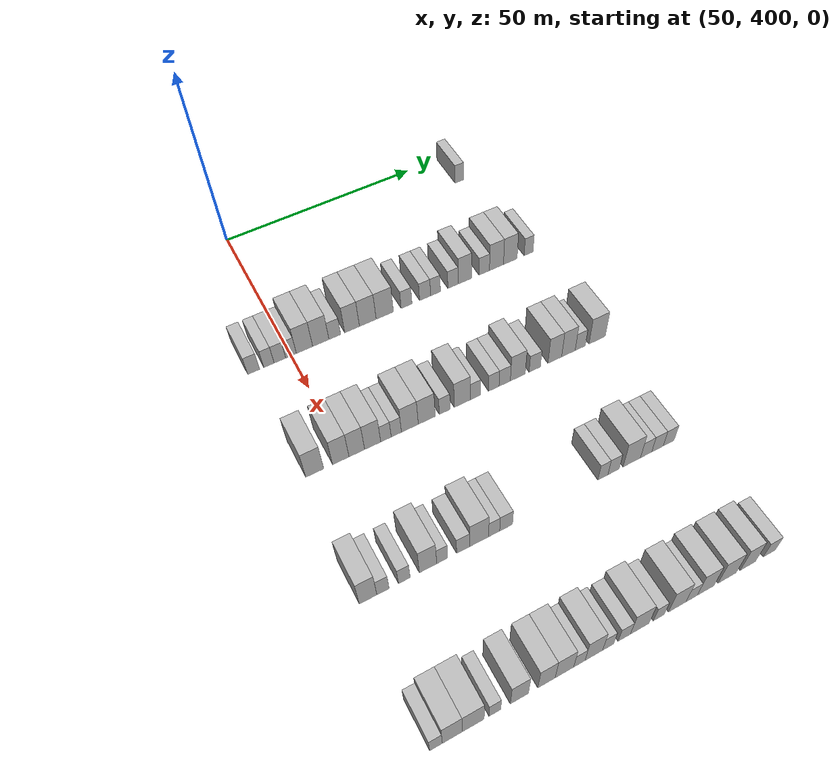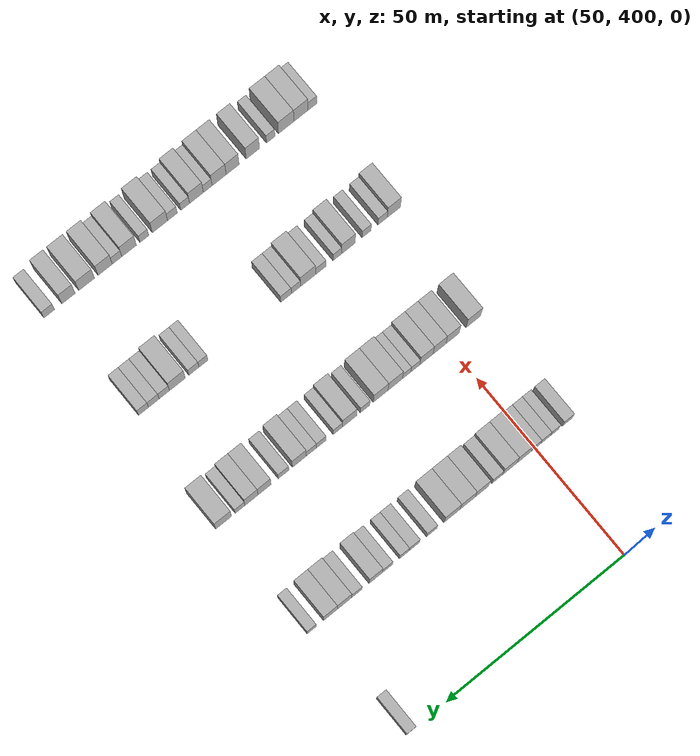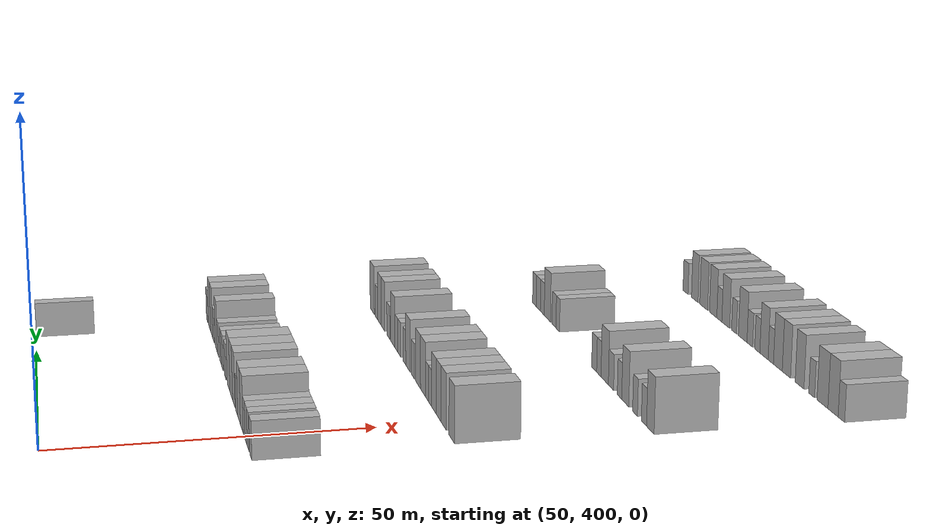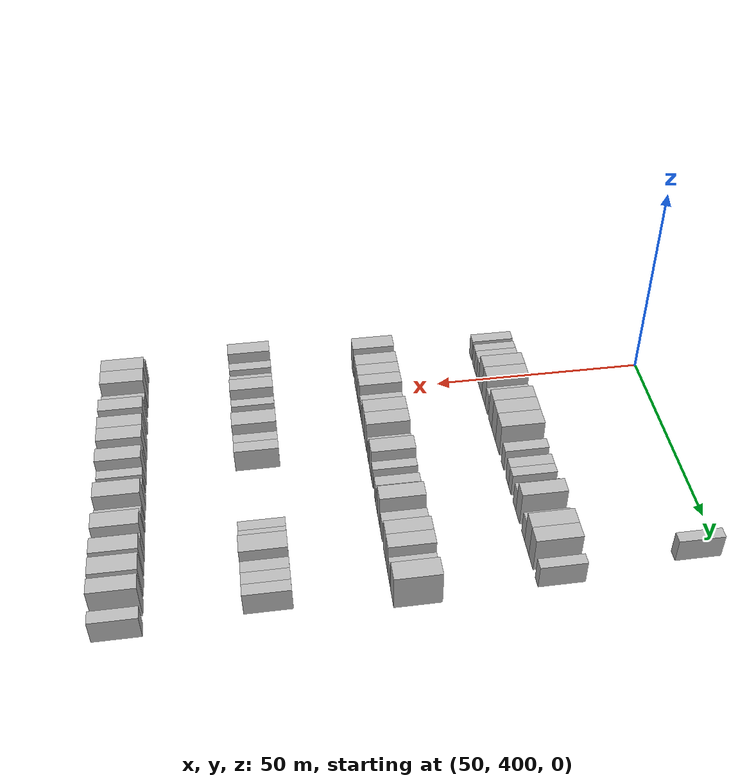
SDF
<sdf version="1.6">
 <world name="default">
  <model name="building_454">
   <static>1</static>
   <pose>55.0000 459.7949 0 0.000000 0.000000 0.000000</pose>
   <link name="link">
    <pose>0 0 3.00 0 0 0</pose>
    <collision name="collision"><geometry><box><size>10.0000 2.5331 6.0000</size></box></geometry></collision>
    <visual name="visual">
     <cast_shadows>0</cast_shadows>
     <geometry><box><size>10.0000 2.5331 6.0000</size></box></geometry>
     <material>
      <script>
       <uri>model://HANNAS_wall/materials/scripts</uri>
       <uri>model://HANNAS_wall/materials/textures</uri>
       <name>vrc/HANNAS_wall</name>
      </script>
     </material>
    </visual>
   </link>
  </model>
  <model name="building_666">
   <static>1</static>
   <pose>85.0000 391.0215 0 0.000000 0.000000 0.000000</pose>
   <link name="link">
    <pose>0 0 3.00 0 0 0</pose>
    <collision name="collision"><geometry><box><size>10.0000 2.8382 6.0000</size></box></geometry></collision>
    <visual name="visual">
     <cast_shadows>0</cast_shadows>
     <geometry><box><size>10.0000 2.8382 6.0000</size></box></geometry>
     <material>
      <script>
       <uri>model://HANNAS_wall/materials/scripts</uri>
       <uri>model://HANNAS_wall/materials/textures</uri>
       <name>vrc/HANNAS_wall</name>
      </script>
     </material>
    </visual>
   </link>
  </model>
  <model name="building_667">
   <static>1</static>
   <pose>85.0000 394.6802 0 0.000000 0.000000 0.000000</pose>
   <link name="link">
    <pose>0 0 3.00 0 0 0</pose>
    <collision name="collision"><geometry><box><size>10.0000 2.4791 6.0000</size></box></geometry></collision>
    <visual name="visual">
     <cast_shadows>0</cast_shadows>
     <geometry><box><size>10.0000 2.4791 6.0000</size></box></geometry>
     <material>
      <script>
       <uri>model://HANNAS_wall/materials/scripts</uri>
       <uri>model://HANNAS_wall/materials/textures</uri>
       <name>vrc/HANNAS_wall</name>
      </script>
     </material>
    </visual>
   </link>
  </model>
  <model name="building_668">
   <static>1</static>
   <pose>85.0000 397.3188 0 0.000000 0.000000 0.000000</pose>
   <link name="link">
    <pose>0 0 3.00 0 0 0</pose>
    <collision name="collision"><geometry><box><size>10.0000 2.7982 6.0000</size></box></geometry></collision>
    <visual name="visual">
     <cast_shadows>0</cast_shadows>
     <geometry><box><size>10.0000 2.7982 6.0000</size></box></geometry>
     <material>
      <script>
       <uri>model://HANNAS_wall/materials/scripts</uri>
       <uri>model://HANNAS_wall/materials/textures</uri>
       <name>vrc/HANNAS_wall</name>
      </script>
     </material>
    </visual>
   </link>
  </model>
  <model name="building_669">
   <static>1</static>
   <pose>85.0000 400.0194 0 0.000000 0.000000 0.000000</pose>
   <link name="link">
    <pose>0 0 3.00 0 0 0</pose>
    <collision name="collision"><geometry><box><size>10.0000 2.6029 6.0000</size></box></geometry></collision>
    <visual name="visual">
     <cast_shadows>0</cast_shadows>
     <geometry><box><size>10.0000 2.6029 6.0000</size></box></geometry>
     <material>
      <script>
       <uri>model://HANNAS_wall/materials/scripts</uri>
       <uri>model://HANNAS_wall/materials/textures</uri>
       <name>vrc/HANNAS_wall</name>
      </script>
     </material>
    </visual>
   </link>
  </model>
  <model name="building_670">
   <static>1</static>
   <pose>85.0000 403.3253 0 0.000000 0.000000 0.000000</pose>
   <link name="link">
    <pose>0 0 4.50 0 0 0</pose>
    <collision name="collision"><geometry><box><size>10.0000 4.0091 9.0000</size></box></geometry></collision>
    <visual name="visual">
     <cast_shadows>0</cast_shadows>
     <geometry><box><size>10.0000 4.0091 9.0000</size></box></geometry>
     <material>
      <script>
       <uri>model://HANNAS_wall/materials/scripts</uri>
       <uri>model://HANNAS_wall/materials/textures</uri>
       <name>vrc/HANNAS_wall</name>
      </script>
     </material>
    </visual>
   </link>
  </model>
  <model name="building_671">
   <static>1</static>
   <pose>85.0000 407.3472 0 0.000000 0.000000 0.000000</pose>
   <link name="link">
    <pose>0 0 4.50 0 0 0</pose>
    <collision name="collision"><geometry><box><size>10.0000 4.0347 9.0000</size></box></geometry></collision>
    <visual name="visual">
     <cast_shadows>0</cast_shadows>
     <geometry><box><size>10.0000 4.0347 9.0000</size></box></geometry>
     <material>
      <script>
       <uri>model://HANNAS_wall/materials/scripts</uri>
       <uri>model://HANNAS_wall/materials/textures</uri>
       <name>vrc/HANNAS_wall</name>
      </script>
     </material>
    </visual>
   </link>
  </model>
  <model name="building_672">
   <static>1</static>
   <pose>85.0000 410.8378 0 0.000000 0.000000 0.000000</pose>
   <link name="link">
    <pose>0 0 3.00 0 0 0</pose>
    <collision name="collision"><geometry><box><size>10.0000 2.9465 6.0000</size></box></geometry></collision>
    <visual name="visual">
     <cast_shadows>0</cast_shadows>
     <geometry><box><size>10.0000 2.9465 6.0000</size></box></geometry>
     <material>
      <script>
       <uri>model://HANNAS_wall/materials/scripts</uri>
       <uri>model://HANNAS_wall/materials/textures</uri>
       <name>vrc/HANNAS_wall</name>
      </script>
     </material>
    </visual>
   </link>
  </model>
  <model name="building_673">
   <static>1</static>
   <pose>85.0000 415.1798 0 0.000000 0.000000 0.000000</pose>
   <link name="link">
    <pose>0 0 4.50 0 0 0</pose>
    <collision name="collision"><geometry><box><size>10.0000 3.7377 9.0000</size></box></geometry></collision>
    <visual name="visual">
     <cast_shadows>0</cast_shadows>
     <geometry><box><size>10.0000 3.7377 9.0000</size></box></geometry>
     <material>
      <script>
       <uri>model://HANNAS_wall/materials/scripts</uri>
       <uri>model://HANNAS_wall/materials/textures</uri>
       <name>vrc/HANNAS_wall</name>
      </script>
     </material>
    </visual>
   </link>
  </model>
  <model name="building_674">
   <static>1</static>
   <pose>85.0000 419.1866 0 0.000000 0.000000 0.000000</pose>
   <link name="link">
    <pose>0 0 4.50 0 0 0</pose>
    <collision name="collision"><geometry><box><size>10.0000 4.2758 9.0000</size></box></geometry></collision>
    <visual name="visual">
     <cast_shadows>0</cast_shadows>
     <geometry><box><size>10.0000 4.2758 9.0000</size></box></geometry>
     <material>
      <script>
       <uri>model://HANNAS_wall/materials/scripts</uri>
       <uri>model://HANNAS_wall/materials/textures</uri>
       <name>vrc/HANNAS_wall</name>
      </script>
     </material>
    </visual>
   </link>
  </model>
  <model name="building_675">
   <static>1</static>
   <pose>85.0000 423.5569 0 0.000000 0.000000 0.000000</pose>
   <link name="link">
    <pose>0 0 4.50 0 0 0</pose>
    <collision name="collision"><geometry><box><size>10.0000 4.4648 9.0000</size></box></geometry></collision>
    <visual name="visual">
     <cast_shadows>0</cast_shadows>
     <geometry><box><size>10.0000 4.4648 9.0000</size></box></geometry>
     <material>
      <script>
       <uri>model://HANNAS_wall/materials/scripts</uri>
       <uri>model://HANNAS_wall/materials/textures</uri>
       <name>vrc/HANNAS_wall</name>
      </script>
     </material>
    </visual>
   </link>
  </model>
  <model name="building_676">
   <static>1</static>
   <pose>85.0000 429.2192 0 0.000000 0.000000 0.000000</pose>
   <link name="link">
    <pose>0 0 3.00 0 0 0</pose>
    <collision name="collision"><geometry><box><size>10.0000 2.8599 6.0000</size></box></geometry></collision>
    <visual name="visual">
     <cast_shadows>0</cast_shadows>
     <geometry><box><size>10.0000 2.8599 6.0000</size></box></geometry>
     <material>
      <script>
       <uri>model://HANNAS_wall/materials/scripts</uri>
       <uri>model://HANNAS_wall/materials/textures</uri>
       <name>vrc/HANNAS_wall</name>
      </script>
     </material>
    </visual>
   </link>
  </model>
  <model name="building_677">
   <static>1</static>
   <pose>85.0000 434.1129 0 0.000000 0.000000 0.000000</pose>
   <link name="link">
    <pose>0 0 3.00 0 0 0</pose>
    <collision name="collision"><geometry><box><size>10.0000 2.9276 6.0000</size></box></geometry></collision>
    <visual name="visual">
     <cast_shadows>0</cast_shadows>
     <geometry><box><size>10.0000 2.9276 6.0000</size></box></geometry>
     <material>
      <script>
       <uri>model://HANNAS_wall/materials/scripts</uri>
       <uri>model://HANNAS_wall/materials/textures</uri>
       <name>vrc/HANNAS_wall</name>
      </script>
     </material>
    </visual>
   </link>
  </model>
  <model name="building_678">
   <static>1</static>
   <pose>85.0000 436.8897 0 0.000000 0.000000 0.000000</pose>
   <link name="link">
    <pose>0 0 3.00 0 0 0</pose>
    <collision name="collision"><geometry><box><size>10.0000 2.6261 6.0000</size></box></geometry></collision>
    <visual name="visual">
     <cast_shadows>0</cast_shadows>
     <geometry><box><size>10.0000 2.6261 6.0000</size></box></geometry>
     <material>
      <script>
       <uri>model://HANNAS_wall/materials/scripts</uri>
       <uri>model://HANNAS_wall/materials/textures</uri>
       <name>vrc/HANNAS_wall</name>
      </script>
     </material>
    </visual>
   </link>
  </model>
  <model name="building_679">
   <static>1</static>
   <pose>85.0000 441.6103 0 0.000000 0.000000 0.000000</pose>
   <link name="link">
    <pose>0 0 3.00 0 0 0</pose>
    <collision name="collision"><geometry><box><size>10.0000 2.8151 6.0000</size></box></geometry></collision>
    <visual name="visual">
     <cast_shadows>0</cast_shadows>
     <geometry><box><size>10.0000 2.8151 6.0000</size></box></geometry>
     <material>
      <script>
       <uri>model://HANNAS_wall/materials/scripts</uri>
       <uri>model://HANNAS_wall/materials/textures</uri>
       <name>vrc/HANNAS_wall</name>
      </script>
     </material>
    </visual>
   </link>
  </model>
  <model name="building_680">
   <static>1</static>
   <pose>85.0000 444.8473 0 0.000000 0.000000 0.000000</pose>
   <link name="link">
    <pose>0 0 4.50 0 0 0</pose>
    <collision name="collision"><geometry><box><size>10.0000 3.6589 9.0000</size></box></geometry></collision>
    <visual name="visual">
     <cast_shadows>0</cast_shadows>
     <geometry><box><size>10.0000 3.6589 9.0000</size></box></geometry>
     <material>
      <script>
       <uri>model://HANNAS_wall/materials/scripts</uri>
       <uri>model://HANNAS_wall/materials/textures</uri>
       <name>vrc/HANNAS_wall</name>
      </script>
     </material>
    </visual>
   </link>
  </model>
  <model name="building_681">
   <static>1</static>
   <pose>85.0000 450.1234 0 0.000000 0.000000 0.000000</pose>
   <link name="link">
    <pose>0 0 3.00 0 0 0</pose>
    <collision name="collision"><geometry><box><size>10.0000 2.8934 6.0000</size></box></geometry></collision>
    <visual name="visual">
     <cast_shadows>0</cast_shadows>
     <geometry><box><size>10.0000 2.8934 6.0000</size></box></geometry>
     <material>
      <script>
       <uri>model://HANNAS_wall/materials/scripts</uri>
       <uri>model://HANNAS_wall/materials/textures</uri>
       <name>vrc/HANNAS_wall</name>
      </script>
     </material>
    </visual>
   </link>
  </model>
  <model name="building_682">
   <static>1</static>
   <pose>85.0000 453.5253 0 0.000000 0.000000 0.000000</pose>
   <link name="link">
    <pose>0 0 4.50 0 0 0</pose>
    <collision name="collision"><geometry><box><size>10.0000 3.9103 9.0000</size></box></geometry></collision>
    <visual name="visual">
     <cast_shadows>0</cast_shadows>
     <geometry><box><size>10.0000 3.9103 9.0000</size></box></geometry>
     <material>
      <script>
       <uri>model://HANNAS_wall/materials/scripts</uri>
       <uri>model://HANNAS_wall/materials/textures</uri>
       <name>vrc/HANNAS_wall</name>
      </script>
     </material>
    </visual>
   </link>
  </model>
  <model name="building_683">
   <static>1</static>
   <pose>85.0000 457.3898 0 0.000000 0.000000 0.000000</pose>
   <link name="link">
    <pose>0 0 4.50 0 0 0</pose>
    <collision name="collision"><geometry><box><size>10.0000 3.8187 9.0000</size></box></geometry></collision>
    <visual name="visual">
     <cast_shadows>0</cast_shadows>
     <geometry><box><size>10.0000 3.8187 9.0000</size></box></geometry>
     <material>
      <script>
       <uri>model://HANNAS_wall/materials/scripts</uri>
       <uri>model://HANNAS_wall/materials/textures</uri>
       <name>vrc/HANNAS_wall</name>
      </script>
     </material>
    </visual>
   </link>
  </model>
  <model name="building_684">
   <static>1</static>
   <pose>85.0000 462.5543 0 0.000000 0.000000 0.000000</pose>
   <link name="link">
    <pose>0 0 3.00 0 0 0</pose>
    <collision name="collision"><geometry><box><size>10.0000 2.5103 6.0000</size></box></geometry></collision>
    <visual name="visual">
     <cast_shadows>0</cast_shadows>
     <geometry><box><size>10.0000 2.5103 6.0000</size></box></geometry>
     <material>
      <script>
       <uri>model://HANNAS_wall/materials/scripts</uri>
       <uri>model://HANNAS_wall/materials/textures</uri>
       <name>vrc/HANNAS_wall</name>
      </script>
     </material>
    </visual>
   </link>
  </model>
  <model name="building_897">
   <static>1</static>
   <pose>115.0000 392.6122 0 0.000000 0.000000 0.000000</pose>
   <link name="link">
    <pose>0 0 4.50 0 0 0</pose>
    <collision name="collision"><geometry><box><size>10.0000 4.0948 9.0000</size></box></geometry></collision>
    <visual name="visual">
     <cast_shadows>0</cast_shadows>
     <geometry><box><size>10.0000 4.0948 9.0000</size></box></geometry>
     <material>
      <script>
       <uri>model://HANNAS_wall/materials/scripts</uri>
       <uri>model://HANNAS_wall/materials/textures</uri>
       <name>vrc/HANNAS_wall</name>
      </script>
     </material>
    </visual>
   </link>
  </model>
  <model name="building_898">
   <static>1</static>
   <pose>115.0000 398.5466 0 0.000000 0.000000 0.000000</pose>
   <link name="link">
    <pose>0 0 4.50 0 0 0</pose>
    <collision name="collision"><geometry><box><size>10.0000 3.7739 9.0000</size></box></geometry></collision>
    <visual name="visual">
     <cast_shadows>0</cast_shadows>
     <geometry><box><size>10.0000 3.7739 9.0000</size></box></geometry>
     <material>
      <script>
       <uri>model://HANNAS_wall/materials/scripts</uri>
       <uri>model://HANNAS_wall/materials/textures</uri>
       <name>vrc/HANNAS_wall</name>
      </script>
     </material>
    </visual>
   </link>
  </model>
  <model name="building_899">
   <static>1</static>
   <pose>115.0000 402.2479 0 0.000000 0.000000 0.000000</pose>
   <link name="link">
    <pose>0 0 4.50 0 0 0</pose>
    <collision name="collision"><geometry><box><size>10.0000 3.6287 9.0000</size></box></geometry></collision>
    <visual name="visual">
     <cast_shadows>0</cast_shadows>
     <geometry><box><size>10.0000 3.6287 9.0000</size></box></geometry>
     <material>
      <script>
       <uri>model://HANNAS_wall/materials/scripts</uri>
       <uri>model://HANNAS_wall/materials/textures</uri>
       <name>vrc/HANNAS_wall</name>
      </script>
     </material>
    </visual>
   </link>
  </model>
  <model name="building_900">
   <static>1</static>
   <pose>115.0000 405.9411 0 0.000000 0.000000 0.000000</pose>
   <link name="link">
    <pose>0 0 4.50 0 0 0</pose>
    <collision name="collision"><geometry><box><size>10.0000 3.7577 9.0000</size></box></geometry></collision>
    <visual name="visual">
     <cast_shadows>0</cast_shadows>
     <geometry><box><size>10.0000 3.7577 9.0000</size></box></geometry>
     <material>
      <script>
       <uri>model://HANNAS_wall/materials/scripts</uri>
       <uri>model://HANNAS_wall/materials/textures</uri>
       <name>vrc/HANNAS_wall</name>
      </script>
     </material>
    </visual>
   </link>
  </model>
  <model name="building_901">
   <static>1</static>
   <pose>115.0000 409.0632 0 0.000000 0.000000 0.000000</pose>
   <link name="link">
    <pose>0 0 3.00 0 0 0</pose>
    <collision name="collision"><geometry><box><size>10.0000 2.4864 6.0000</size></box></geometry></collision>
    <visual name="visual">
     <cast_shadows>0</cast_shadows>
     <geometry><box><size>10.0000 2.4864 6.0000</size></box></geometry>
     <material>
      <script>
       <uri>model://HANNAS_wall/materials/scripts</uri>
       <uri>model://HANNAS_wall/materials/textures</uri>
       <name>vrc/HANNAS_wall</name>
      </script>
     </material>
    </visual>
   </link>
  </model>
  <model name="building_902">
   <static>1</static>
   <pose>115.0000 411.5177 0 0.000000 0.000000 0.000000</pose>
   <link name="link">
    <pose>0 0 3.00 0 0 0</pose>
    <collision name="collision"><geometry><box><size>10.0000 2.4228 6.0000</size></box></geometry></collision>
    <visual name="visual">
     <cast_shadows>0</cast_shadows>
     <geometry><box><size>10.0000 2.4228 6.0000</size></box></geometry>
     <material>
      <script>
       <uri>model://HANNAS_wall/materials/scripts</uri>
       <uri>model://HANNAS_wall/materials/textures</uri>
       <name>vrc/HANNAS_wall</name>
      </script>
     </material>
    </visual>
   </link>
  </model>
  <model name="building_903">
   <static>1</static>
   <pose>115.0000 414.7535 0 0.000000 0.000000 0.000000</pose>
   <link name="link">
    <pose>0 0 4.50 0 0 0</pose>
    <collision name="collision"><geometry><box><size>10.0000 4.0487 9.0000</size></box></geometry></collision>
    <visual name="visual">
     <cast_shadows>0</cast_shadows>
     <geometry><box><size>10.0000 4.0487 9.0000</size></box></geometry>
     <material>
      <script>
       <uri>model://HANNAS_wall/materials/scripts</uri>
       <uri>model://HANNAS_wall/materials/textures</uri>
       <name>vrc/HANNAS_wall</name>
      </script>
     </material>
    </visual>
   </link>
  </model>
  <model name="building_904">
   <static>1</static>
   <pose>115.0000 418.8326 0 0.000000 0.000000 0.000000</pose>
   <link name="link">
    <pose>0 0 4.50 0 0 0</pose>
    <collision name="collision"><geometry><box><size>10.0000 4.1096 9.0000</size></box></geometry></collision>
    <visual name="visual">
     <cast_shadows>0</cast_shadows>
     <geometry><box><size>10.0000 4.1096 9.0000</size></box></geometry>
     <material>
      <script>
       <uri>model://HANNAS_wall/materials/scripts</uri>
       <uri>model://HANNAS_wall/materials/textures</uri>
       <name>vrc/HANNAS_wall</name>
      </script>
     </material>
    </visual>
   </link>
  </model>
  <model name="building_905">
   <static>1</static>
   <pose>115.0000 423.2217 0 0.000000 0.000000 0.000000</pose>
   <link name="link">
    <pose>0 0 3.00 0 0 0</pose>
    <collision name="collision"><geometry><box><size>10.0000 2.6685 6.0000</size></box></geometry></collision>
    <visual name="visual">
     <cast_shadows>0</cast_shadows>
     <geometry><box><size>10.0000 2.6685 6.0000</size></box></geometry>
     <material>
      <script>
       <uri>model://HANNAS_wall/materials/scripts</uri>
       <uri>model://HANNAS_wall/materials/textures</uri>
       <name>vrc/HANNAS_wall</name>
      </script>
     </material>
    </visual>
   </link>
  </model>
  <model name="building_906">
   <static>1</static>
   <pose>115.0000 427.5683 0 0.000000 0.000000 0.000000</pose>
   <link name="link">
    <pose>0 0 4.50 0 0 0</pose>
    <collision name="collision"><geometry><box><size>10.0000 4.0248 9.0000</size></box></geometry></collision>
    <visual name="visual">
     <cast_shadows>0</cast_shadows>
     <geometry><box><size>10.0000 4.0248 9.0000</size></box></geometry>
     <material>
      <script>
       <uri>model://HANNAS_wall/materials/scripts</uri>
       <uri>model://HANNAS_wall/materials/textures</uri>
       <name>vrc/HANNAS_wall</name>
      </script>
     </material>
    </visual>
   </link>
  </model>
  <model name="building_907">
   <static>1</static>
   <pose>115.0000 430.8566 0 0.000000 0.000000 0.000000</pose>
   <link name="link">
    <pose>0 0 3.00 0 0 0</pose>
    <collision name="collision"><geometry><box><size>10.0000 2.5518 6.0000</size></box></geometry></collision>
    <visual name="visual">
     <cast_shadows>0</cast_shadows>
     <geometry><box><size>10.0000 2.5518 6.0000</size></box></geometry>
     <material>
      <script>
       <uri>model://HANNAS_wall/materials/scripts</uri>
       <uri>model://HANNAS_wall/materials/textures</uri>
       <name>vrc/HANNAS_wall</name>
      </script>
     </material>
    </visual>
   </link>
  </model>
  <model name="building_908">
   <static>1</static>
   <pose>115.0000 435.4700 0 0.000000 0.000000 0.000000</pose>
   <link name="link">
    <pose>0 0 3.00 0 0 0</pose>
    <collision name="collision"><geometry><box><size>10.0000 2.6751 6.0000</size></box></geometry></collision>
    <visual name="visual">
     <cast_shadows>0</cast_shadows>
     <geometry><box><size>10.0000 2.6751 6.0000</size></box></geometry>
     <material>
      <script>
       <uri>model://HANNAS_wall/materials/scripts</uri>
       <uri>model://HANNAS_wall/materials/textures</uri>
       <name>vrc/HANNAS_wall</name>
      </script>
     </material>
    </visual>
   </link>
  </model>
  <model name="building_909">
   <static>1</static>
   <pose>115.0000 438.2445 0 0.000000 0.000000 0.000000</pose>
   <link name="link">
    <pose>0 0 3.00 0 0 0</pose>
    <collision name="collision"><geometry><box><size>10.0000 2.8740 6.0000</size></box></geometry></collision>
    <visual name="visual">
     <cast_shadows>0</cast_shadows>
     <geometry><box><size>10.0000 2.8740 6.0000</size></box></geometry>
     <material>
      <script>
       <uri>model://HANNAS_wall/materials/scripts</uri>
       <uri>model://HANNAS_wall/materials/textures</uri>
       <name>vrc/HANNAS_wall</name>
      </script>
     </material>
    </visual>
   </link>
  </model>
  <model name="building_910">
   <static>1</static>
   <pose>115.0000 441.6093 0 0.000000 0.000000 0.000000</pose>
   <link name="link">
    <pose>0 0 4.50 0 0 0</pose>
    <collision name="collision"><geometry><box><size>10.0000 3.8556 9.0000</size></box></geometry></collision>
    <visual name="visual">
     <cast_shadows>0</cast_shadows>
     <geometry><box><size>10.0000 3.8556 9.0000</size></box></geometry>
     <material>
      <script>
       <uri>model://HANNAS_wall/materials/scripts</uri>
       <uri>model://HANNAS_wall/materials/textures</uri>
       <name>vrc/HANNAS_wall</name>
      </script>
     </material>
    </visual>
   </link>
  </model>
  <model name="building_911">
   <static>1</static>
   <pose>115.0000 446.0100 0 0.000000 0.000000 0.000000</pose>
   <link name="link">
    <pose>0 0 3.00 0 0 0</pose>
    <collision name="collision"><geometry><box><size>10.0000 2.9459 6.0000</size></box></geometry></collision>
    <visual name="visual">
     <cast_shadows>0</cast_shadows>
     <geometry><box><size>10.0000 2.9459 6.0000</size></box></geometry>
     <material>
      <script>
       <uri>model://HANNAS_wall/materials/scripts</uri>
       <uri>model://HANNAS_wall/materials/textures</uri>
       <name>vrc/HANNAS_wall</name>
      </script>
     </material>
    </visual>
   </link>
  </model>
  <model name="building_912">
   <static>1</static>
   <pose>115.0000 451.2958 0 0.000000 0.000000 0.000000</pose>
   <link name="link">
    <pose>0 0 4.50 0 0 0</pose>
    <collision name="collision"><geometry><box><size>10.0000 3.6257 9.0000</size></box></geometry></collision>
    <visual name="visual">
     <cast_shadows>0</cast_shadows>
     <geometry><box><size>10.0000 3.6257 9.0000</size></box></geometry>
     <material>
      <script>
       <uri>model://HANNAS_wall/materials/scripts</uri>
       <uri>model://HANNAS_wall/materials/textures</uri>
       <name>vrc/HANNAS_wall</name>
      </script>
     </material>
    </visual>
   </link>
  </model>
  <model name="building_913">
   <static>1</static>
   <pose>115.0000 454.9191 0 0.000000 0.000000 0.000000</pose>
   <link name="link">
    <pose>0 0 4.50 0 0 0</pose>
    <collision name="collision"><geometry><box><size>10.0000 3.6208 9.0000</size></box></geometry></collision>
    <visual name="visual">
     <cast_shadows>0</cast_shadows>
     <geometry><box><size>10.0000 3.6208 9.0000</size></box></geometry>
     <material>
      <script>
       <uri>model://HANNAS_wall/materials/scripts</uri>
       <uri>model://HANNAS_wall/materials/textures</uri>
       <name>vrc/HANNAS_wall</name>
      </script>
     </material>
    </visual>
   </link>
  </model>
  <model name="building_914">
   <static>1</static>
   <pose>115.0000 458.0896 0 0.000000 0.000000 0.000000</pose>
   <link name="link">
    <pose>0 0 3.00 0 0 0</pose>
    <collision name="collision"><geometry><box><size>10.0000 2.7204 6.0000</size></box></geometry></collision>
    <visual name="visual">
     <cast_shadows>0</cast_shadows>
     <geometry><box><size>10.0000 2.7204 6.0000</size></box></geometry>
     <material>
      <script>
       <uri>model://HANNAS_wall/materials/scripts</uri>
       <uri>model://HANNAS_wall/materials/textures</uri>
       <name>vrc/HANNAS_wall</name>
      </script>
     </material>
    </visual>
   </link>
  </model>
  <model name="building_915">
   <static>1</static>
   <pose>115.0000 462.6593 0 0.000000 0.000000 0.000000</pose>
   <link name="link">
    <pose>0 0 4.50 0 0 0</pose>
    <collision name="collision"><geometry><box><size>10.0000 4.4190 9.0000</size></box></geometry></collision>
    <visual name="visual">
     <cast_shadows>0</cast_shadows>
     <geometry><box><size>10.0000 4.4190 9.0000</size></box></geometry>
     <material>
      <script>
       <uri>model://HANNAS_wall/materials/scripts</uri>
       <uri>model://HANNAS_wall/materials/textures</uri>
       <name>vrc/HANNAS_wall</name>
      </script>
     </material>
    </visual>
   </link>
  </model>
  <model name="building_1133">
   <static>1</static>
   <pose>145.0000 390.4632 0 0.000000 0.000000 0.000000</pose>
   <link name="link">
    <pose>0 0 4.50 0 0 0</pose>
    <collision name="collision"><geometry><box><size>10.0000 3.7382 9.0000</size></box></geometry></collision>
    <visual name="visual">
     <cast_shadows>0</cast_shadows>
     <geometry><box><size>10.0000 3.7382 9.0000</size></box></geometry>
     <material>
      <script>
       <uri>model://HANNAS_wall/materials/scripts</uri>
       <uri>model://HANNAS_wall/materials/textures</uri>
       <name>vrc/HANNAS_wall</name>
      </script>
     </material>
    </visual>
   </link>
  </model>
  <model name="building_1134">
   <static>1</static>
   <pose>145.0000 393.6411 0 0.000000 0.000000 0.000000</pose>
   <link name="link">
    <pose>0 0 3.00 0 0 0</pose>
    <collision name="collision"><geometry><box><size>10.0000 2.6177 6.0000</size></box></geometry></collision>
    <visual name="visual">
     <cast_shadows>0</cast_shadows>
     <geometry><box><size>10.0000 2.6177 6.0000</size></box></geometry>
     <material>
      <script>
       <uri>model://HANNAS_wall/materials/scripts</uri>
       <uri>model://HANNAS_wall/materials/textures</uri>
       <name>vrc/HANNAS_wall</name>
      </script>
     </material>
    </visual>
   </link>
  </model>
  <model name="building_1135">
   <static>1</static>
   <pose>145.0000 398.2140 0 0.000000 0.000000 0.000000</pose>
   <link name="link">
    <pose>0 0 3.00 0 0 0</pose>
    <collision name="collision"><geometry><box><size>10.0000 2.5280 6.0000</size></box></geometry></collision>
    <visual name="visual">
     <cast_shadows>0</cast_shadows>
     <geometry><box><size>10.0000 2.5280 6.0000</size></box></geometry>
     <material>
      <script>
       <uri>model://HANNAS_wall/materials/scripts</uri>
       <uri>model://HANNAS_wall/materials/textures</uri>
       <name>vrc/HANNAS_wall</name>
      </script>
     </material>
    </visual>
   </link>
  </model>
  <model name="building_1136">
   <static>1</static>
   <pose>145.0000 403.3889 0 0.000000 0.000000 0.000000</pose>
   <link name="link">
    <pose>0 0 4.50 0 0 0</pose>
    <collision name="collision"><geometry><box><size>10.0000 3.8219 9.0000</size></box></geometry></collision>
    <visual name="visual">
     <cast_shadows>0</cast_shadows>
     <geometry><box><size>10.0000 3.8219 9.0000</size></box></geometry>
     <material>
      <script>
       <uri>model://HANNAS_wall/materials/scripts</uri>
       <uri>model://HANNAS_wall/materials/textures</uri>
       <name>vrc/HANNAS_wall</name>
      </script>
     </material>
    </visual>
   </link>
  </model>
  <model name="building_1137">
   <static>1</static>
   <pose>145.0000 406.5137 0 0.000000 0.000000 0.000000</pose>
   <link name="link">
    <pose>0 0 3.00 0 0 0</pose>
    <collision name="collision"><geometry><box><size>10.0000 2.4277 6.0000</size></box></geometry></collision>
    <visual name="visual">
     <cast_shadows>0</cast_shadows>
     <geometry><box><size>10.0000 2.4277 6.0000</size></box></geometry>
     <material>
      <script>
       <uri>model://HANNAS_wall/materials/scripts</uri>
       <uri>model://HANNAS_wall/materials/textures</uri>
       <name>vrc/HANNAS_wall</name>
      </script>
     </material>
    </visual>
   </link>
  </model>
  <model name="building_1138">
   <static>1</static>
   <pose>145.0000 411.2133 0 0.000000 0.000000 0.000000</pose>
   <link name="link">
    <pose>0 0 3.00 0 0 0</pose>
    <collision name="collision"><geometry><box><size>10.0000 2.9714 6.0000</size></box></geometry></collision>
    <visual name="visual">
     <cast_shadows>0</cast_shadows>
     <geometry><box><size>10.0000 2.9714 6.0000</size></box></geometry>
     <material>
      <script>
       <uri>model://HANNAS_wall/materials/scripts</uri>
       <uri>model://HANNAS_wall/materials/textures</uri>
       <name>vrc/HANNAS_wall</name>
      </script>
     </material>
    </visual>
   </link>
  </model>
  <model name="building_1139">
   <static>1</static>
   <pose>145.0000 414.8252 0 0.000000 0.000000 0.000000</pose>
   <link name="link">
    <pose>0 0 4.50 0 0 0</pose>
    <collision name="collision"><geometry><box><size>10.0000 4.2524 9.0000</size></box></geometry></collision>
    <visual name="visual">
     <cast_shadows>0</cast_shadows>
     <geometry><box><size>10.0000 4.2524 9.0000</size></box></geometry>
     <material>
      <script>
       <uri>model://HANNAS_wall/materials/scripts</uri>
       <uri>model://HANNAS_wall/materials/textures</uri>
       <name>vrc/HANNAS_wall</name>
      </script>
     </material>
    </visual>
   </link>
  </model>
  <model name="building_1140">
   <static>1</static>
   <pose>145.0000 418.2354 0 0.000000 0.000000 0.000000</pose>
   <link name="link">
    <pose>0 0 3.00 0 0 0</pose>
    <collision name="collision"><geometry><box><size>10.0000 2.5680 6.0000</size></box></geometry></collision>
    <visual name="visual">
     <cast_shadows>0</cast_shadows>
     <geometry><box><size>10.0000 2.5680 6.0000</size></box></geometry>
     <material>
      <script>
       <uri>model://HANNAS_wall/materials/scripts</uri>
       <uri>model://HANNAS_wall/materials/textures</uri>
       <name>vrc/HANNAS_wall</name>
      </script>
     </material>
    </visual>
   </link>
  </model>
  <model name="building_1141">
   <static>1</static>
   <pose>145.0000 421.0014 0 0.000000 0.000000 0.000000</pose>
   <link name="link">
    <pose>0 0 3.00 0 0 0</pose>
    <collision name="collision"><geometry><box><size>10.0000 2.9641 6.0000</size></box></geometry></collision>
    <visual name="visual">
     <cast_shadows>0</cast_shadows>
     <geometry><box><size>10.0000 2.9641 6.0000</size></box></geometry>
     <material>
      <script>
       <uri>model://HANNAS_wall/materials/scripts</uri>
       <uri>model://HANNAS_wall/materials/textures</uri>
       <name>vrc/HANNAS_wall</name>
      </script>
     </material>
    </visual>
   </link>
  </model>
  <model name="building_1142">
   <static>1</static>
   <pose>145.0000 444.2012 0 0.000000 0.000000 0.000000</pose>
   <link name="link">
    <pose>0 0 3.00 0 0 0</pose>
    <collision name="collision"><geometry><box><size>10.0000 2.4785 6.0000</size></box></geometry></collision>
    <visual name="visual">
     <cast_shadows>0</cast_shadows>
     <geometry><box><size>10.0000 2.4785 6.0000</size></box></geometry>
     <material>
      <script>
       <uri>model://HANNAS_wall/materials/scripts</uri>
       <uri>model://HANNAS_wall/materials/textures</uri>
       <name>vrc/HANNAS_wall</name>
      </script>
     </material>
    </visual>
   </link>
  </model>
  <model name="building_1143">
   <static>1</static>
   <pose>145.0000 446.8484 0 0.000000 0.000000 0.000000</pose>
   <link name="link">
    <pose>0 0 3.00 0 0 0</pose>
    <collision name="collision"><geometry><box><size>10.0000 2.8159 6.0000</size></box></geometry></collision>
    <visual name="visual">
     <cast_shadows>0</cast_shadows>
     <geometry><box><size>10.0000 2.8159 6.0000</size></box></geometry>
     <material>
      <script>
       <uri>model://HANNAS_wall/materials/scripts</uri>
       <uri>model://HANNAS_wall/materials/textures</uri>
       <name>vrc/HANNAS_wall</name>
      </script>
     </material>
    </visual>
   </link>
  </model>
  <model name="building_1144">
   <static>1</static>
   <pose>145.0000 451.4538 0 0.000000 0.000000 0.000000</pose>
   <link name="link">
    <pose>0 0 4.50 0 0 0</pose>
    <collision name="collision"><geometry><box><size>10.0000 4.3950 9.0000</size></box></geometry></collision>
    <visual name="visual">
     <cast_shadows>0</cast_shadows>
     <geometry><box><size>10.0000 4.3950 9.0000</size></box></geometry>
     <material>
      <script>
       <uri>model://HANNAS_wall/materials/scripts</uri>
       <uri>model://HANNAS_wall/materials/textures</uri>
       <name>vrc/HANNAS_wall</name>
      </script>
     </material>
    </visual>
   </link>
  </model>
  <model name="building_1145">
   <static>1</static>
   <pose>145.0000 455.0868 0 0.000000 0.000000 0.000000</pose>
   <link name="link">
    <pose>0 0 3.00 0 0 0</pose>
    <collision name="collision"><geometry><box><size>10.0000 2.8708 6.0000</size></box></geometry></collision>
    <visual name="visual">
     <cast_shadows>0</cast_shadows>
     <geometry><box><size>10.0000 2.8708 6.0000</size></box></geometry>
     <material>
      <script>
       <uri>model://HANNAS_wall/materials/scripts</uri>
       <uri>model://HANNAS_wall/materials/textures</uri>
       <name>vrc/HANNAS_wall</name>
      </script>
     </material>
    </visual>
   </link>
  </model>
  <model name="building_1146">
   <static>1</static>
   <pose>145.0000 458.0054 0 0.000000 0.000000 0.000000</pose>
   <link name="link">
    <pose>0 0 3.00 0 0 0</pose>
    <collision name="collision"><geometry><box><size>10.0000 2.9665 6.0000</size></box></geometry></collision>
    <visual name="visual">
     <cast_shadows>0</cast_shadows>
     <geometry><box><size>10.0000 2.9665 6.0000</size></box></geometry>
     <material>
      <script>
       <uri>model://HANNAS_wall/materials/scripts</uri>
       <uri>model://HANNAS_wall/materials/textures</uri>
       <name>vrc/HANNAS_wall</name>
      </script>
     </material>
    </visual>
   </link>
  </model>
  <model name="building_1147">
   <static>1</static>
   <pose>145.0000 460.8879 0 0.000000 0.000000 0.000000</pose>
   <link name="link">
    <pose>0 0 3.00 0 0 0</pose>
    <collision name="collision"><geometry><box><size>10.0000 2.7984 6.0000</size></box></geometry></collision>
    <visual name="visual">
     <cast_shadows>0</cast_shadows>
     <geometry><box><size>10.0000 2.7984 6.0000</size></box></geometry>
     <material>
      <script>
       <uri>model://HANNAS_wall/materials/scripts</uri>
       <uri>model://HANNAS_wall/materials/textures</uri>
       <name>vrc/HANNAS_wall</name>
      </script>
     </material>
    </visual>
   </link>
  </model>
  <model name="building_1355">
   <static>1</static>
   <pose>175.0000 389.2021 0 0.000000 0.000000 0.000000</pose>
   <link name="link">
    <pose>0 0 3.00 0 0 0</pose>
    <collision name="collision"><geometry><box><size>10.0000 2.5157 6.0000</size></box></geometry></collision>
    <visual name="visual">
     <cast_shadows>0</cast_shadows>
     <geometry><box><size>10.0000 2.5157 6.0000</size></box></geometry>
     <material>
      <script>
       <uri>model://HANNAS_wall/materials/scripts</uri>
       <uri>model://HANNAS_wall/materials/textures</uri>
       <name>vrc/HANNAS_wall</name>
      </script>
     </material>
    </visual>
   </link>
  </model>
  <model name="building_1356">
   <static>1</static>
   <pose>175.0000 392.4699 0 0.000000 0.000000 0.000000</pose>
   <link name="link">
    <pose>0 0 4.50 0 0 0</pose>
    <collision name="collision"><geometry><box><size>10.0000 4.0201 9.0000</size></box></geometry></collision>
    <visual name="visual">
     <cast_shadows>0</cast_shadows>
     <geometry><box><size>10.0000 4.0201 9.0000</size></box></geometry>
     <material>
      <script>
       <uri>model://HANNAS_wall/materials/scripts</uri>
       <uri>model://HANNAS_wall/materials/textures</uri>
       <name>vrc/HANNAS_wall</name>
      </script>
     </material>
    </visual>
   </link>
  </model>
  <model name="building_1357">
   <static>1</static>
   <pose>175.0000 396.6745 0 0.000000 0.000000 0.000000</pose>
   <link name="link">
    <pose>0 0 4.50 0 0 0</pose>
    <collision name="collision"><geometry><box><size>10.0000 4.3890 9.0000</size></box></geometry></collision>
    <visual name="visual">
     <cast_shadows>0</cast_shadows>
     <geometry><box><size>10.0000 4.3890 9.0000</size></box></geometry>
     <material>
      <script>
       <uri>model://HANNAS_wall/materials/scripts</uri>
       <uri>model://HANNAS_wall/materials/textures</uri>
       <name>vrc/HANNAS_wall</name>
      </script>
     </material>
    </visual>
   </link>
  </model>
  <model name="building_1358">
   <static>1</static>
   <pose>175.0000 401.0746 0 0.000000 0.000000 0.000000</pose>
   <link name="link">
    <pose>0 0 3.00 0 0 0</pose>
    <collision name="collision"><geometry><box><size>10.0000 2.4113 6.0000</size></box></geometry></collision>
    <visual name="visual">
     <cast_shadows>0</cast_shadows>
     <geometry><box><size>10.0000 2.4113 6.0000</size></box></geometry>
     <material>
      <script>
       <uri>model://HANNAS_wall/materials/scripts</uri>
       <uri>model://HANNAS_wall/materials/textures</uri>
       <name>vrc/HANNAS_wall</name>
      </script>
     </material>
    </visual>
   </link>
  </model>
  <model name="building_1359">
   <static>1</static>
   <pose>175.0000 406.1678 0 0.000000 0.000000 0.000000</pose>
   <link name="link">
    <pose>0 0 4.50 0 0 0</pose>
    <collision name="collision"><geometry><box><size>10.0000 3.7751 9.0000</size></box></geometry></collision>
    <visual name="visual">
     <cast_shadows>0</cast_shadows>
     <geometry><box><size>10.0000 3.7751 9.0000</size></box></geometry>
     <material>
      <script>
       <uri>model://HANNAS_wall/materials/scripts</uri>
       <uri>model://HANNAS_wall/materials/textures</uri>
       <name>vrc/HANNAS_wall</name>
      </script>
     </material>
    </visual>
   </link>
  </model>
  <model name="building_1360">
   <static>1</static>
   <pose>175.0000 411.8972 0 0.000000 0.000000 0.000000</pose>
   <link name="link">
    <pose>0 0 4.50 0 0 0</pose>
    <collision name="collision"><geometry><box><size>10.0000 3.6836 9.0000</size></box></geometry></collision>
    <visual name="visual">
     <cast_shadows>0</cast_shadows>
     <geometry><box><size>10.0000 3.6836 9.0000</size></box></geometry>
     <material>
      <script>
       <uri>model://HANNAS_wall/materials/scripts</uri>
       <uri>model://HANNAS_wall/materials/textures</uri>
       <name>vrc/HANNAS_wall</name>
      </script>
     </material>
    </visual>
   </link>
  </model>
  <model name="building_1361">
   <static>1</static>
   <pose>175.0000 415.7313 0 0.000000 0.000000 0.000000</pose>
   <link name="link">
    <pose>0 0 4.50 0 0 0</pose>
    <collision name="collision"><geometry><box><size>10.0000 3.9846 9.0000</size></box></geometry></collision>
    <visual name="visual">
     <cast_shadows>0</cast_shadows>
     <geometry><box><size>10.0000 3.9846 9.0000</size></box></geometry>
     <material>
      <script>
       <uri>model://HANNAS_wall/materials/scripts</uri>
       <uri>model://HANNAS_wall/materials/textures</uri>
       <name>vrc/HANNAS_wall</name>
      </script>
     </material>
    </visual>
   </link>
  </model>
  <model name="building_1362">
   <static>1</static>
   <pose>175.0000 418.9600 0 0.000000 0.000000 0.000000</pose>
   <link name="link">
    <pose>0 0 3.00 0 0 0</pose>
    <collision name="collision"><geometry><box><size>10.0000 2.4729 6.0000</size></box></geometry></collision>
    <visual name="visual">
     <cast_shadows>0</cast_shadows>
     <geometry><box><size>10.0000 2.4729 6.0000</size></box></geometry>
     <material>
      <script>
       <uri>model://HANNAS_wall/materials/scripts</uri>
       <uri>model://HANNAS_wall/materials/textures</uri>
       <name>vrc/HANNAS_wall</name>
      </script>
     </material>
    </visual>
   </link>
  </model>
  <model name="building_1363">
   <static>1</static>
   <pose>175.0000 422.1384 0 0.000000 0.000000 0.000000</pose>
   <link name="link">
    <pose>0 0 4.50 0 0 0</pose>
    <collision name="collision"><geometry><box><size>10.0000 3.8838 9.0000</size></box></geometry></collision>
    <visual name="visual">
     <cast_shadows>0</cast_shadows>
     <geometry><box><size>10.0000 3.8838 9.0000</size></box></geometry>
     <material>
      <script>
       <uri>model://HANNAS_wall/materials/scripts</uri>
       <uri>model://HANNAS_wall/materials/textures</uri>
       <name>vrc/HANNAS_wall</name>
      </script>
     </material>
    </visual>
   </link>
  </model>
  <model name="building_1364">
   <static>1</static>
   <pose>175.0000 425.3163 0 0.000000 0.000000 0.000000</pose>
   <link name="link">
    <pose>0 0 3.00 0 0 0</pose>
    <collision name="collision"><geometry><box><size>10.0000 2.4720 6.0000</size></box></geometry></collision>
    <visual name="visual">
     <cast_shadows>0</cast_shadows>
     <geometry><box><size>10.0000 2.4720 6.0000</size></box></geometry>
     <material>
      <script>
       <uri>model://HANNAS_wall/materials/scripts</uri>
       <uri>model://HANNAS_wall/materials/textures</uri>
       <name>vrc/HANNAS_wall</name>
      </script>
     </material>
    </visual>
   </link>
  </model>
  <model name="building_1365">
   <static>1</static>
   <pose>175.0000 428.9238 0 0.000000 0.000000 0.000000</pose>
   <link name="link">
    <pose>0 0 3.00 0 0 0</pose>
    <collision name="collision"><geometry><box><size>10.0000 2.7431 6.0000</size></box></geometry></collision>
    <visual name="visual">
     <cast_shadows>0</cast_shadows>
     <geometry><box><size>10.0000 2.7431 6.0000</size></box></geometry>
     <material>
      <script>
       <uri>model://HANNAS_wall/materials/scripts</uri>
       <uri>model://HANNAS_wall/materials/textures</uri>
       <name>vrc/HANNAS_wall</name>
      </script>
     </material>
    </visual>
   </link>
  </model>
  <model name="building_1366">
   <static>1</static>
   <pose>175.0000 432.4317 0 0.000000 0.000000 0.000000</pose>
   <link name="link">
    <pose>0 0 4.50 0 0 0</pose>
    <collision name="collision"><geometry><box><size>10.0000 4.2727 9.0000</size></box></geometry></collision>
    <visual name="visual">
     <cast_shadows>0</cast_shadows>
     <geometry><box><size>10.0000 4.2727 9.0000</size></box></geometry>
     <material>
      <script>
       <uri>model://HANNAS_wall/materials/scripts</uri>
       <uri>model://HANNAS_wall/materials/textures</uri>
       <name>vrc/HANNAS_wall</name>
      </script>
     </material>
    </visual>
   </link>
  </model>
  <model name="building_1367">
   <static>1</static>
   <pose>175.0000 436.8105 0 0.000000 0.000000 0.000000</pose>
   <link name="link">
    <pose>0 0 3.00 0 0 0</pose>
    <collision name="collision"><geometry><box><size>10.0000 2.4848 6.0000</size></box></geometry></collision>
    <visual name="visual">
     <cast_shadows>0</cast_shadows>
     <geometry><box><size>10.0000 2.4848 6.0000</size></box></geometry>
     <material>
      <script>
       <uri>model://HANNAS_wall/materials/scripts</uri>
       <uri>model://HANNAS_wall/materials/textures</uri>
       <name>vrc/HANNAS_wall</name>
      </script>
     </material>
    </visual>
   </link>
  </model>
  <model name="building_1368">
   <static>1</static>
   <pose>175.0000 441.0919 0 0.000000 0.000000 0.000000</pose>
   <link name="link">
    <pose>0 0 4.50 0 0 0</pose>
    <collision name="collision"><geometry><box><size>10.0000 4.0779 9.0000</size></box></geometry></collision>
    <visual name="visual">
     <cast_shadows>0</cast_shadows>
     <geometry><box><size>10.0000 4.0779 9.0000</size></box></geometry>
     <material>
      <script>
       <uri>model://HANNAS_wall/materials/scripts</uri>
       <uri>model://HANNAS_wall/materials/textures</uri>
       <name>vrc/HANNAS_wall</name>
      </script>
     </material>
    </visual>
   </link>
  </model>
  <model name="building_1369">
   <static>1</static>
   <pose>175.0000 444.4658 0 0.000000 0.000000 0.000000</pose>
   <link name="link">
    <pose>0 0 3.00 0 0 0</pose>
    <collision name="collision"><geometry><box><size>10.0000 2.6699 6.0000</size></box></geometry></collision>
    <visual name="visual">
     <cast_shadows>0</cast_shadows>
     <geometry><box><size>10.0000 2.6699 6.0000</size></box></geometry>
     <material>
      <script>
       <uri>model://HANNAS_wall/materials/scripts</uri>
       <uri>model://HANNAS_wall/materials/textures</uri>
       <name>vrc/HANNAS_wall</name>
      </script>
     </material>
    </visual>
   </link>
  </model>
  <model name="building_1370">
   <static>1</static>
   <pose>175.0000 447.7939 0 0.000000 0.000000 0.000000</pose>
   <link name="link">
    <pose>0 0 4.50 0 0 0</pose>
    <collision name="collision"><geometry><box><size>10.0000 3.9863 9.0000</size></box></geometry></collision>
    <visual name="visual">
     <cast_shadows>0</cast_shadows>
     <geometry><box><size>10.0000 3.9863 9.0000</size></box></geometry>
     <material>
      <script>
       <uri>model://HANNAS_wall/materials/scripts</uri>
       <uri>model://HANNAS_wall/materials/textures</uri>
       <name>vrc/HANNAS_wall</name>
      </script>
     </material>
    </visual>
   </link>
  </model>
  <model name="building_1371">
   <static>1</static>
   <pose>175.0000 452.9875 0 0.000000 0.000000 0.000000</pose>
   <link name="link">
    <pose>0 0 4.50 0 0 0</pose>
    <collision name="collision"><geometry><box><size>10.0000 4.4011 9.0000</size></box></geometry></collision>
    <visual name="visual">
     <cast_shadows>0</cast_shadows>
     <geometry><box><size>10.0000 4.4011 9.0000</size></box></geometry>
     <material>
      <script>
       <uri>model://HANNAS_wall/materials/scripts</uri>
       <uri>model://HANNAS_wall/materials/textures</uri>
       <name>vrc/HANNAS_wall</name>
      </script>
     </material>
    </visual>
   </link>
  </model>
  <model name="building_1372">
   <static>1</static>
   <pose>175.0000 458.0498 0 0.000000 0.000000 0.000000</pose>
   <link name="link">
    <pose>0 0 4.50 0 0 0</pose>
    <collision name="collision"><geometry><box><size>10.0000 3.7235 9.0000</size></box></geometry></collision>
    <visual name="visual">
     <cast_shadows>0</cast_shadows>
     <geometry><box><size>10.0000 3.7235 9.0000</size></box></geometry>
     <material>
      <script>
       <uri>model://HANNAS_wall/materials/scripts</uri>
       <uri>model://HANNAS_wall/materials/textures</uri>
       <name>vrc/HANNAS_wall</name>
      </script>
     </material>
    </visual>
   </link>
  </model>
  <model name="building_1373">
   <static>1</static>
   <pose>175.0000 463.3975 0 0.000000 0.000000 0.000000</pose>
   <link name="link">
    <pose>0 0 3.00 0 0 0</pose>
    <collision name="collision"><geometry><box><size>10.0000 2.9718 6.0000</size></box></geometry></collision>
    <visual name="visual">
     <cast_shadows>0</cast_shadows>
     <geometry><box><size>10.0000 2.9718 6.0000</size></box></geometry>
     <material>
      <script>
       <uri>model://HANNAS_wall/materials/scripts</uri>
       <uri>model://HANNAS_wall/materials/textures</uri>
       <name>vrc/HANNAS_wall</name>
      </script>
     </material>
    </visual>
   </link>
  </model>
 </world>
</sdf>
